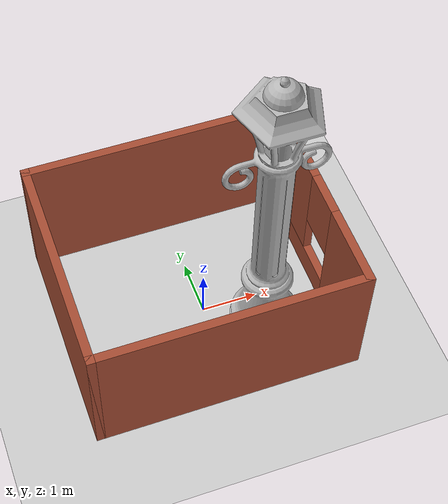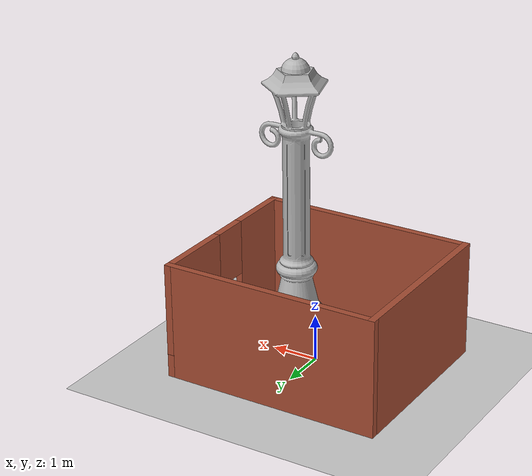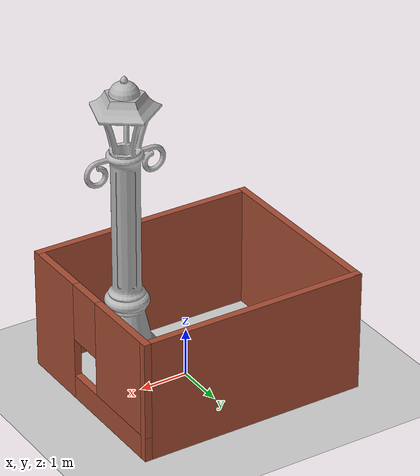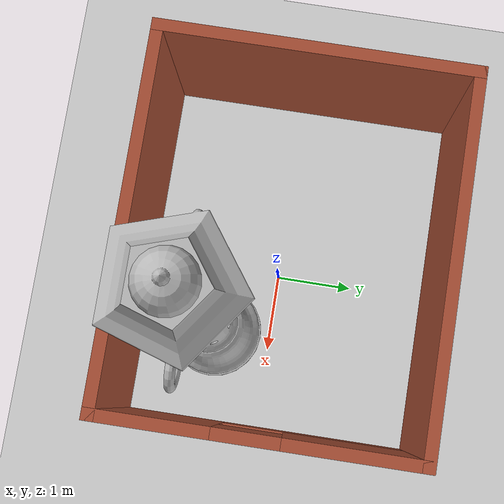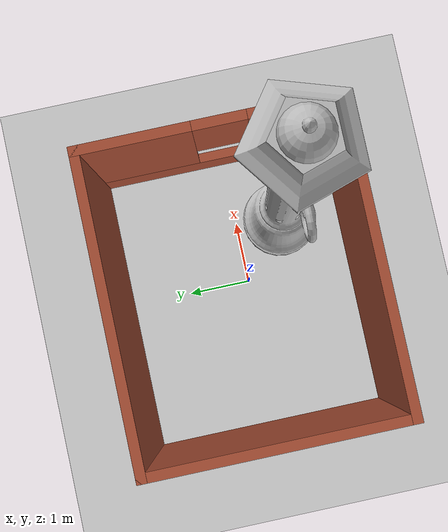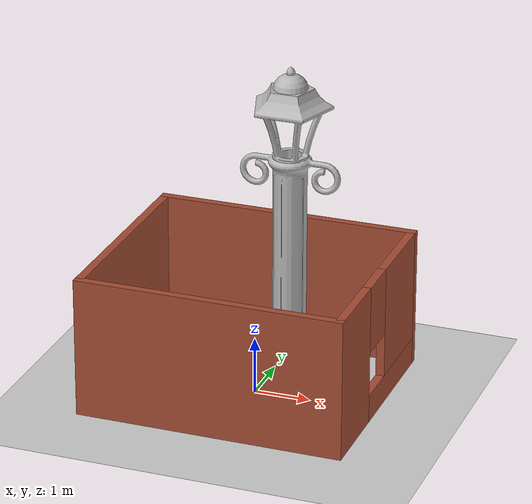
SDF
<sdf version="1.4">
  <world name="default">

    <scene>
      <ambient>0.4 0.4 0.4 1</ambient>
      <background>0.7 0.7 0.7 1</background>
      <shadows>true</shadows>
    </scene>

    <!-- A global light source -->
    <include>
      <uri>model://sun</uri>
    </include>

    <!-- A ground plane -->
    <include>
      <uri>model://ground_plane</uri>
    </include>
    <physics type="ode">
      <gravity>0 0 -9.81</gravity> <!-- Стандартное значение гравитации в м/с² -->
    </physics>

 <model name="lamp">
      <pose>0 0 0 1.57 0 0</pose> <!-- Позиция и ориентация -->
      <link name="link">
        <visual name="visual">
          <geometry>
            <mesh>
              <uri>file://stll/lamp.stl</uri>
              <scale>0.05 0.05 0.05</scale> <!-- Масштабирование -->
            </mesh>
          </geometry>
        </visual>
        <collision name="collision">
          <geometry>
            <mesh>
              <uri>file://stll/lamp.stl</uri>
              <scale>0.05 0.05 0.05</scale>
            </mesh>
          </geometry>
        </collision>
      </link>
    </model>

  <model name='lab4'>
    <pose>-0.16749 0.128055 0 0 -0 0</pose>
    <link name='Wall_5'>
      <collision name='Wall_5_Collision'>
        <geometry>
          <box>
            <size>4.75 0.15 2.5</size>
          </box>
        </geometry>
        <pose>0 0 1.25 0 -0 0</pose>
      </collision>
      <visual name='Wall_5_Visual'>
        <pose>0 0 1.25 0 -0 0</pose>
        <geometry>
          <box>
            <size>4.75 0.15 2.5</size>
          </box>
        </geometry>
        <material>
          <script>
            <uri>file://media/materials/scripts/gazebo.material</uri>
            <name>Gazebo/Bricks</name>
          </script>
          <ambient>1 1 1 1</ambient>
        </material>
        <meta>
          <layer>0</layer>
        </meta>
      </visual>
      <pose>0 1.925 0 0 -0 3.14159</pose>
    </link>
    <link name='Wall_7'>
      <collision name='Wall_7_Collision'>
        <geometry>
          <box>
            <size>4 0.15 2.5</size>
          </box>
        </geometry>
        <pose>0 0 1.25 0 -0 0</pose>
      </collision>
      <visual name='Wall_7_Visual'>
        <pose>0 0 1.25 0 -0 0</pose>
        <geometry>
          <box>
            <size>4 0.15 2.5</size>
          </box>
        </geometry>
        <material>
          <script>
            <uri>file://media/materials/scripts/gazebo.material</uri>
            <name>Gazebo/Bricks</name>
          </script>
          <ambient>1 1 1 1</ambient>
        </material>
        <meta>
          <layer>0</layer>
        </meta>
      </visual>
      <pose>-2.3 0 0 0 -0 -1.5708</pose>
    </link>
    <link name='Wall_8'>
      <collision name='Wall_8_Collision'>
        <geometry>
          <box>
            <size>4.75 0.15 2.5</size>
          </box>
        </geometry>
        <pose>0 0 1.25 0 -0 0</pose>
      </collision>
      <visual name='Wall_8_Visual'>
        <pose>0 0 1.25 0 -0 0</pose>
        <geometry>
          <box>
            <size>4.75 0.15 2.5</size>
          </box>
        </geometry>
        <material>
          <script>
            <uri>file://media/materials/scripts/gazebo.material</uri>
            <name>Gazebo/Bricks</name>
          </script>
          <ambient>1 1 1 1</ambient>
        </material>
        <meta>
          <layer>0</layer>
        </meta>
      </visual>
      <pose>0 -1.925 0 0 -0 0</pose>
    </link>
    <link name='Wall_9'>
      <pose>2.3 0 0 0 -0 1.5708</pose>
      <visual name='Wall_9_Visual_0'>
        <pose>-1.2727 0 1.25 0 -0 0</pose>
        <geometry>
          <box>
            <size>1.45459 0.15 2.5</size>
          </box>
        </geometry>
        <material>
          <script>
            <uri>file://media/materials/scripts/gazebo.material</uri>
            <name>Gazebo/Bricks</name>
          </script>
          <ambient>1 1 1 1</ambient>
        </material>
        <meta>
          <layer>0</layer>
        </meta>
      </visual>
      <collision name='Wall_9_Collision_0'>
        <geometry>
          <box>
            <size>1.45459 0.15 2.5</size>
          </box>
        </geometry>
        <pose>-1.2727 0 1.25 0 -0 0</pose>
      </collision>
      <visual name='Wall_9_Visual_1'>
        <pose>0.727296 0 0.25 0 -0 0</pose>
        <geometry>
          <box>
            <size>2.54541 0.15 0.5</size>
          </box>
        </geometry>
        <material>
          <script>
            <uri>file://media/materials/scripts/gazebo.material</uri>
            <name>Gazebo/Bricks</name>
          </script>
          <ambient>1 1 1 1</ambient>
        </material>
        <meta>
          <layer>0</layer>
        </meta>
      </visual>
      <collision name='Wall_9_Collision_1'>
        <geometry>
          <box>
            <size>2.54541 0.15 0.5</size>
          </box>
        </geometry>
        <pose>0.727296 0 0.25 0 -0 0</pose>
      </collision>
      <visual name='Wall_9_Visual_2'>
        <pose>1.1273 0 1.5 0 -0 0</pose>
        <geometry>
          <box>
            <size>1.74541 0.15 2</size>
          </box>
        </geometry>
        <material>
          <script>
            <uri>file://media/materials/scripts/gazebo.material</uri>
            <name>Gazebo/Bricks</name>
          </script>
          <ambient>1 1 1 1</ambient>
        </material>
        <meta>
          <layer>0</layer>
        </meta>
      </visual>
      <collision name='Wall_9_Collision_2'>
        <geometry>
          <box>
            <size>1.74541 0.15 2</size>
          </box>
        </geometry>
        <pose>1.1273 0 1.5 0 -0 0</pose>
      </collision>
      <visual name='Wall_9_Visual_3'>
        <pose>-0.145408 0 1.9 0 -0 0</pose>
        <geometry>
          <box>
            <size>0.8 0.15 1.2</size>
          </box>
        </geometry>
        <material>
          <script>
            <uri>file://media/materials/scripts/gazebo.material</uri>
            <name>Gazebo/Bricks</name>
          </script>
          <ambient>1 1 1 1</ambient>
        </material>
        <meta>
          <layer>0</layer>
        </meta>
      </visual>
      <collision name='Wall_9_Collision_3'>
        <geometry>
          <box>
            <size>0.8 0.15 1.2</size>
          </box>
        </geometry>
        <pose>-0.145408 0 1.9 0 -0 0</pose>
      </collision>
    </link>
    <static>1</static>
  </model>

    <physics type="ode">
      <real_time_update_rate>1000.0</real_time_update_rate>
      <max_step_size>0.001</max_step_size>
      <real_time_factor>1</real_time_factor>
      <ode>
        <solver>
          <type>quick</type>
          <iters>150</iters>
          <precon_iters>0</precon_iters>
          <sor>1.400000</sor>
          <use_dynamic_moi_rescaling>1</use_dynamic_moi_rescaling>
        </solver>
        <constraints>
          <cfm>0.00001</cfm>
          <erp>0.2</erp>
          <contact_max_correcting_vel>2000.000000</contact_max_correcting_vel>
          <contact_surface_layer>0.01000</contact_surface_layer>
        </constraints>
      </ode>
    </physics>
  </world>

</sdf>
